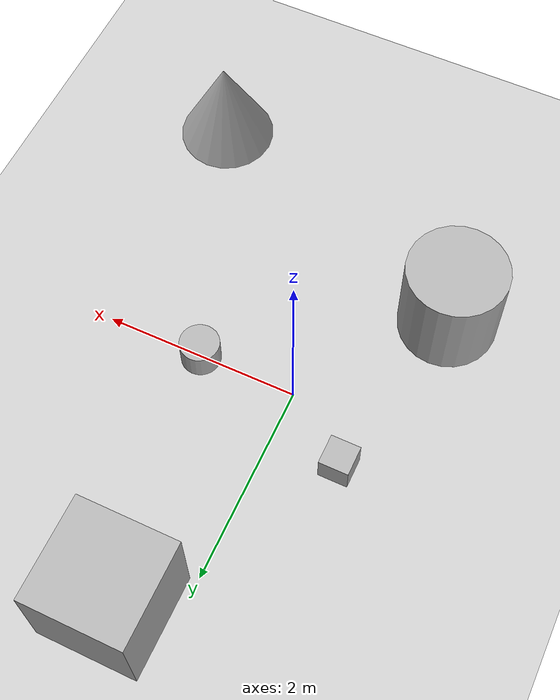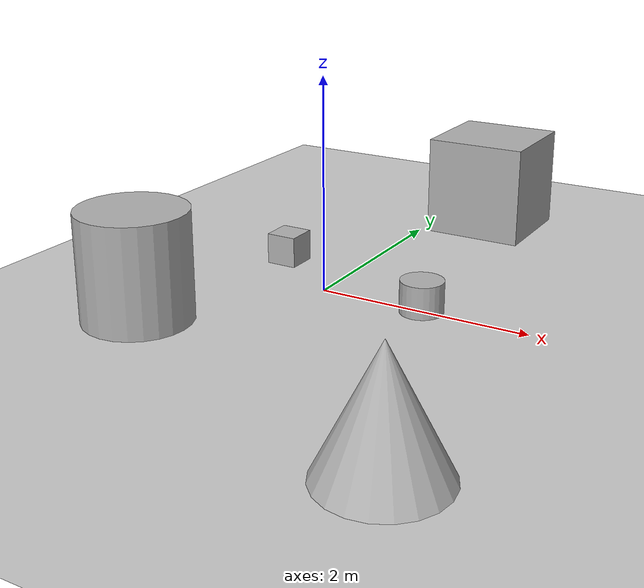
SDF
<sdf version='1.10'>
  <world name='demo'>
    <plugin name='gz::sim::systems::Physics' filename='gz-sim-physics-system'/>
    <plugin name='gz::sim::systems::UserCommands' filename='gz-sim-user-commands-system'/>
    <plugin name='gz::sim::systems::SceneBroadcaster' filename='gz-sim-scene-broadcaster-system'/>
    <plugin name='gz::sim::systems::Contact' filename='gz-sim-contact-system'/>
    <plugin name='gz::sim::systems::Sensors' filename='gz-sim-sensors-system'>
      <render_engine>ogre2</render_engine>
    </plugin>
    <gravity>0 0 -9.8000000000000007</gravity>
    <magnetic_field>5.5644999999999998e-06 2.2875799999999999e-05 -4.2388400000000002e-05</magnetic_field>
    <atmosphere type='adiabatic'/>
    <physics type='ode'>
      <max_step_size>0.001</max_step_size>
      <real_time_factor>1</real_time_factor>
      <real_time_update_rate>1000</real_time_update_rate>
    </physics>
    <scene>
      <ambient>0.400000006 0.400000006 0.400000006 1</ambient>
      <background>0.699999988 0.699999988 0.699999988 1</background>
      <shadows>true</shadows>
    </scene>
    <model name='ground_plane'>
      <static>true</static>
      <link name='link'>
        <collision name='collision'>
          <geometry>
            <plane>
              <normal>0 0 1</normal>
              <size>100 100</size>
            </plane>
          </geometry>
          <surface>
            <friction>
              <ode/>
            </friction>
            <bounce/>
            <contact/>
          </surface>
        </collision>
        <visual name='visual'>
          <geometry>
            <plane>
              <normal>0 0 1</normal>
              <size>100 100</size>
            </plane>
          </geometry>
          <material>
            <ambient>0.800000012 0.800000012 0.800000012 1</ambient>
            <diffuse>0.800000012 0.800000012 0.800000012 1</diffuse>
            <specular>0.800000012 0.800000012 0.800000012 1</specular>
          </material>
        </visual>
        <pose>0 0 0 0 0 0</pose>
        <inertial>
          <pose>0 0 0 0 0 0</pose>
          <mass>1</mass>
          <inertia>
            <ixx>1</ixx>
            <ixy>0</ixy>
            <ixz>0</ixz>
            <iyy>1</iyy>
            <iyz>0</iyz>
            <izz>1</izz>
          </inertia>
        </inertial>
        <enable_wind>false</enable_wind>
      </link>
      <pose>0 0 0 0 0 0</pose>
      <self_collide>false</self_collide>
    </model>
    <model name='cylinder'>
      <pose>1 4.1862268793236995e-20 0.14999942832637039 -2.9295714220499181e-19 -6.2081865518469062e-19 -5.3236892302250058e-21</pose>
      <link name='cylinder_link'>
        <inertial>
          <inertia>
            <ixx>0.14499999999999999</ixx>
            <ixy>0</ixy>
            <ixz>0</ixz>
            <iyy>0.14499999999999999</iyy>
            <iyz>0</iyz>
            <izz>0.125</izz>
          </inertia>
          <mass>1</mass>
          <pose>0 0 0 0 0 0</pose>
        </inertial>
        <collision name='cylinder_collision'>
          <geometry>
            <cylinder>
              <radius>0.20000000000000001</radius>
              <length>0.29999999999999999</length>
            </cylinder>
          </geometry>
          <surface>
            <friction>
              <ode/>
            </friction>
            <bounce/>
            <contact/>
          </surface>
        </collision>
        <visual name='cylinder_visual'>
          <geometry>
            <cylinder>
              <radius>0.20000000000000001</radius>
              <length>0.29999999999999999</length>
            </cylinder>
          </geometry>
          <material>
            <ambient>0.300000012 0.300000012 0.300000012 1</ambient>
            <diffuse>0.699999988 0.699999988 0.699999988 1</diffuse>
            <specular>1 1 1 1</specular>
          </material>
        </visual>
        <pose>0 0 0 0 0 0</pose>
        <enable_wind>false</enable_wind>
      </link>
      <static>false</static>
      <self_collide>false</self_collide>
    </model>
    <model name='box'>
      <pose>-0.69999999999999996 0.5 0.14999942692161244 -3.4495969753094586e-19 -2.6505143524190671e-19 1.039011443229859e-20</pose>
      <link name='box_link'>
        <inertial>
          <inertia>
            <ixx>0.16666</ixx>
            <ixy>0</ixy>
            <ixz>0</ixz>
            <iyy>0.16666</iyy>
            <iyz>0</iyz>
            <izz>0.16666</izz>
          </inertia>
          <mass>1</mass>
          <pose>0 0 0 0 0 0</pose>
        </inertial>
        <collision name='box_collision'>
          <geometry>
            <box>
              <size>0.29999999999999999 0.29999999999999999 0.29999999999999999</size>
            </box>
          </geometry>
          <surface>
            <friction>
              <ode/>
            </friction>
            <bounce/>
            <contact/>
          </surface>
        </collision>
        <visual name='box_visual'>
          <geometry>
            <box>
              <size>0.29999999999999999 0.29999999999999999 0.29999999999999999</size>
            </box>
          </geometry>
          <material>
            <ambient>0.300000012 0.300000012 0.300000012 1</ambient>
            <diffuse>0.699999988 0.699999988 0.699999988 1</diffuse>
            <specular>1 1 1 1</specular>
          </material>
        </visual>
        <pose>0 0 0 0 0 0</pose>
        <enable_wind>false</enable_wind>
      </link>
      <static>false</static>
      <self_collide>false</self_collide>
    </model>
    <model name='box_0'>
      <pose>0.57907830850897035 2.5365224461101126 0.49999999990199806 6.2287739151293738e-22 9.3279666454713669e-22 -3.6315533669320137e-22</pose>
      <link name='box_link'>
        <inertial>
          <inertia>
            <ixx>0.16666</ixx>
            <ixy>0</ixy>
            <ixz>0</ixz>
            <iyy>0.16666</iyy>
            <iyz>0</iyz>
            <izz>0.16666</izz>
          </inertia>
          <mass>1</mass>
          <pose>0 0 0 0 0 0</pose>
        </inertial>
        <collision name='box_collision'>
          <geometry>
            <box>
              <size>1 1 1</size>
            </box>
          </geometry>
          <surface>
            <friction>
              <ode/>
            </friction>
            <bounce/>
            <contact/>
          </surface>
        </collision>
        <visual name='box_visual'>
          <geometry>
            <box>
              <size>1 1 1</size>
            </box>
          </geometry>
          <material>
            <ambient>0.300000012 0.300000012 0.300000012 1</ambient>
            <diffuse>0.699999988 0.699999988 0.699999988 1</diffuse>
            <specular>1 1 1 1</specular>
          </material>
        </visual>
        <pose>0 0 0 0 0 0</pose>
        <enable_wind>false</enable_wind>
      </link>
      <static>false</static>
      <self_collide>false</self_collide>
    </model>
    <model name='cylinder_0'>
      <pose>-1.0562068772247946 -1.378593534727611 0.49999942638036005 8.6722382704255131e-21 3.4948975069165951e-19 1.5383512581195611e-20</pose>
      <link name='cylinder_link'>
        <inertial>
          <inertia>
            <ixx>0.14580000000000001</ixx>
            <ixy>0</ixy>
            <ixz>0</ixz>
            <iyy>0.14580000000000001</iyy>
            <iyz>0</iyz>
            <izz>0.125</izz>
          </inertia>
          <mass>1</mass>
          <pose>0 0 0 0 0 0</pose>
        </inertial>
        <collision name='cylinder_collision'>
          <geometry>
            <cylinder>
              <radius>0.5</radius>
              <length>1</length>
            </cylinder>
          </geometry>
          <surface>
            <friction>
              <ode/>
            </friction>
            <bounce/>
            <contact/>
          </surface>
        </collision>
        <visual name='cylinder_visual'>
          <geometry>
            <cylinder>
              <radius>0.5</radius>
              <length>1</length>
            </cylinder>
          </geometry>
          <material>
            <ambient>0.300000012 0.300000012 0.300000012 1</ambient>
            <diffuse>0.699999988 0.699999988 0.699999988 1</diffuse>
            <specular>1 1 1 1</specular>
          </material>
        </visual>
        <pose>0 0 0 0 0 0</pose>
        <enable_wind>false</enable_wind>
      </link>
      <static>false</static>
      <self_collide>false</self_collide>
    </model>
    <model name='cone'>
      <pose>2.0001280579544258 -2.608887604455485 0.49999999993296756 5.2543554862613328e-17 -7.7132841034988366e-10 7.7088705269712513e-23</pose>
      <link name='cone_link'>
        <inertial>
          <inertia>
            <ixx>0.074999999999999997</ixx>
            <ixy>0</ixy>
            <ixz>0</ixz>
            <iyy>0.074999999999999997</iyy>
            <iyz>0</iyz>
            <izz>0.074999999999999997</izz>
          </inertia>
          <mass>1</mass>
          <pose>0 0 0 0 0 0</pose>
        </inertial>
        <collision name='cone_collision'>
          <geometry>
            <cone>
              <radius>0.5</radius>
              <length>1</length>
            </cone>
          </geometry>
          <surface>
            <friction>
              <ode/>
            </friction>
            <bounce/>
            <contact/>
          </surface>
        </collision>
        <visual name='cone_visual'>
          <geometry>
            <cone>
              <radius>0.5</radius>
              <length>1</length>
            </cone>
          </geometry>
          <material>
            <ambient>0.300000012 0.300000012 0.300000012 1</ambient>
            <diffuse>0.699999988 0.699999988 0.699999988 1</diffuse>
            <specular>1 1 1 1</specular>
          </material>
        </visual>
        <pose>0 0 0 0 0 0</pose>
        <enable_wind>false</enable_wind>
      </link>
      <static>false</static>
      <self_collide>false</self_collide>
    </model>
    <light name='sun' type='directional'>
      <pose>0 0 10 0 0 0</pose>
      <cast_shadows>true</cast_shadows>
      <intensity>1</intensity>
      <direction>-0.5 0.10000000000000001 -0.90000000000000002</direction>
      <diffuse>0.800000012 0.800000012 0.800000012 1</diffuse>
      <specular>0.200000003 0.200000003 0.200000003 1</specular>
      <attenuation>
        <range>1000</range>
        <linear>0.01</linear>
        <constant>0.90000000000000002</constant>
        <quadratic>0.001</quadratic>
      </attenuation>
      <spot>
        <inner_angle>0</inner_angle>
        <outer_angle>0</outer_angle>
        <falloff>0</falloff>
      </spot>
    </light>
  </world>
</sdf>
